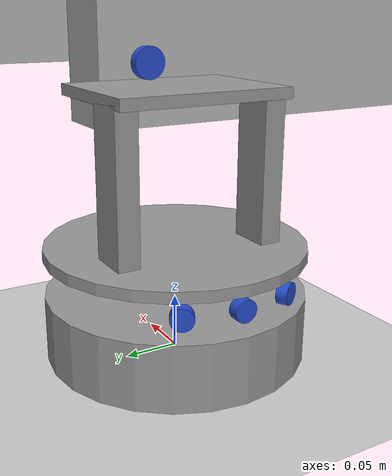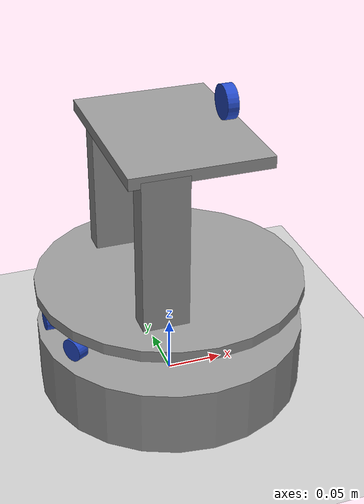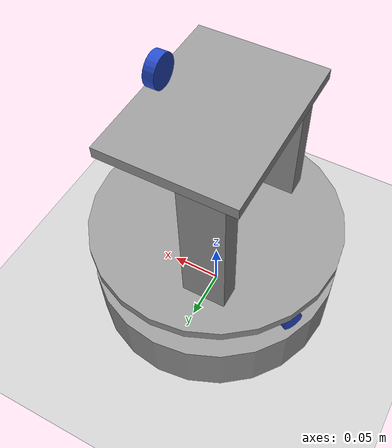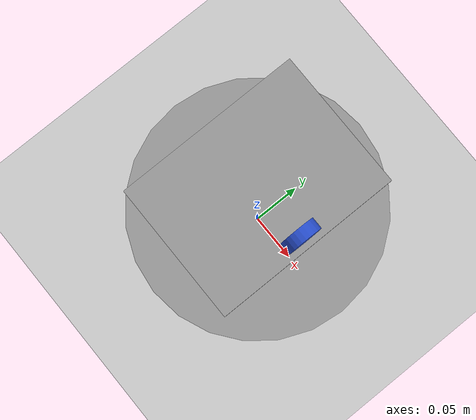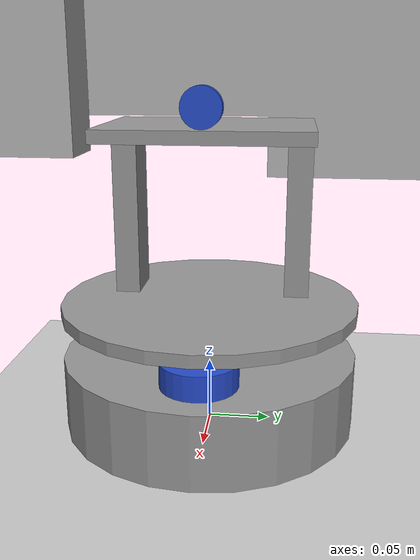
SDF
<?xml version="1.0" ?>
<sdf version="1.5">
  <world name="default">
    <include>
      <uri>model://ground_plane</uri>
    </include>

    <include>
      <static>true</static>
      <uri>model://dummy_room</uri>
      <pose>0 0 0 0 0 0</pose>
    </include>

    <include>
      <uri>model://test_robot</uri>
      <pose>0 0 0 0 0 0</pose>
    </include>

    <scene>
      <ambient>0.5 0.5 0.5 1</ambient>
      <background>0.3 0.3 0.3 1</background>
    </scene>

    <light type="directional" name="sun">
      <cast_shadows>true</cast_shadows>
      <pose>0 0 10 0 0 0</pose>
      <diffuse>0.2 0.2 0.2 1</diffuse>
      <specular>0.2 0.2 0.2 1</specular>
      <attenuation>
        <range>1000</range>
        <constant>0.9</constant>
        <linear>0.01</linear>
        <quadratic>0.001</quadratic>
      </attenuation>
      <direction>0.05 0.05 -1.0</direction>
    </light>

    <light name='point_light_0' type='spot'>
      <cast_shadows>true</cast_shadows>
      <pose>-1.0 -1.0 2.5 0 0 0</pose>
      <diffuse>0.4 0.4 0.4 1</diffuse>
      <specular>0.2 0.2 0.2 1</specular>
      <attenuation>
        <range>20</range>
        <constant>0.2</constant>
        <linear>0.01</linear>
        <quadratic>0.001</quadratic>
      </attenuation>
      <direction>0 0 -1</direction>
      <spot>
        <inner_angle>0.6</inner_angle>
        <outer_angle>2</outer_angle>
        <falloff>1</falloff>
      </spot>
    </light>

    <light name='point_light_1' type='spot'>
      <cast_shadows>true</cast_shadows>
      <pose>2 -5.0 2.5 0 0 0</pose>
      <diffuse>0.4 0.4 0.4 1</diffuse>
      <specular>0.2 0.2 0.2 1</specular>
      <attenuation>
        <range>20</range>
        <constant>0.2</constant>
        <linear>0.01</linear>
        <quadratic>0.001</quadratic>
      </attenuation>
      <direction>0 0 -1</direction>
      <spot>
        <inner_angle>0.6</inner_angle>
        <outer_angle>2</outer_angle>
        <falloff>1</falloff>
      </spot>
    </light>

    <physics name='default_physics' default='0' type='ode'>
      <max_step_size>0.005</max_step_size>
      <real_time_factor>1</real_time_factor>
      <real_time_update_rate>200</real_time_update_rate>
    </physics>
  </world>
</sdf>

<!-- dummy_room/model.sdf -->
<sdf version="1.4">
<model name="dummy_room">
  <pose>0 0 0 0 0 0</pose>
    <link name="link">
      <inertial>
        <mass>1.0</mass>
        <inertia>
          <ixx>0.083</ixx>
          <ixy>0.0</ixy>
          <ixz>0.0</ixz>
          <iyy>0.083</iyy>
          <iyz>0.0</iyz>
          <izz>0.083</izz>
        </inertia>
      </inertial>
      <collision name="collision">
        <geometry>
          <mesh>
            <uri>model://dummy_room/room.stl</uri>
          </mesh>
        </geometry>
      </collision>
      <visual name="visual">
        <geometry>
          <mesh>
            <uri>model://dummy_room/room.stl</uri>
          </mesh>
        </geometry>
      </visual>
    </link>
  </model>
</sdf>

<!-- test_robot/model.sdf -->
<sdf version="1.4">
  <model name="test_robot">
    <link name="base">
      <pose>0 0 0.03 0 0 0</pose>
      <inertial>
        <mass>1.5</mass>
        <inertia>
          <ixx>0.083</ixx>
          <ixy>0.0</ixy>
          <ixz>0.0</ixz>
          <iyy>0.083</iyy>
          <iyz>0.0</iyz>
          <izz>0.083</izz>
        </inertia>
      </inertial>
      <collision name="collision">
        <geometry>
          <cylinder>
            <radius>0.12</radius>
            <length>0.06</length>
          </cylinder>
        </geometry>
        <surface>
          <friction>
            <ode>
              <mu>0.01</mu>
              <mu2>0.01</mu2>
            </ode>
          </friction>
        </surface>
      </collision>
      <visual name="visual">
        <geometry>
          <cylinder>
            <radius>0.12</radius>
            <length>0.06</length>
          </cylinder>
        </geometry>
        <material>
          <script>
            <uri>file://media/materials/scripts/gazebo.material</uri>
            <name>Gazebo/Grey</name>
          </script>
        </material>
      </visual>
    </link>

    <joint name='middle_joint' type='fixed'>
      <parent>base</parent>
      <child>middle</child>
    </joint>

    <link name="middle">
      <pose>0 0 0.1 0 0 0</pose>
      <inertial>
        <mass>0.1</mass>
        <inertia>
          <ixx>0.083</ixx>
          <ixy>0.0</ixy>
          <ixz>0.0</ixz>
          <iyy>0.083</iyy>
          <iyz>0.0</iyz>
          <izz>0.083</izz>
        </inertia>
      </inertial>
      <collision name="collision">
        <geometry>
          <cylinder>
            <radius>0.12</radius>
            <length>0.01</length>
          </cylinder>
        </geometry>
      </collision>
      <visual name="visual">
        <geometry>
          <cylinder>
            <radius>0.12</radius>
            <length>0.01</length>
          </cylinder>
        </geometry>
        <material>
          <script>
            <uri>file://media/materials/scripts/gazebo.material</uri>
            <name>Gazebo/Grey</name>
          </script>
        </material>
      </visual>
    </link>

    <joint name='top_joint' type='fixed'>
      <parent>base</parent>
      <child>top</child>
    </joint>

    <link name="top">
      <pose>0 0 0.24 0 0 0</pose>
      <inertial>
        <mass>0.1</mass>
        <inertia>
          <ixx>0.083</ixx>
          <ixy>0.0</ixy>
          <ixz>0.0</ixz>
          <iyy>0.083</iyy>
          <iyz>0.0</iyz>
          <izz>0.083</izz>
        </inertia>
      </inertial>
      <collision name="collision">
        <geometry>
          <box>
            <size>0.12 0.16 0.01</size>
          </box>
        </geometry>
      </collision>
      <visual name="visual">
        <geometry>
          <box>
            <size>0.12 0.16 0.01</size>
          </box>
        </geometry>
        <material>
          <script>
            <uri>file://media/materials/scripts/gazebo.material</uri>
            <name>Gazebo/Grey</name>
          </script>
        </material>
      </visual>
    </link>

    <joint name='left_joint' type='fixed'>
      <parent>base</parent>
      <child>left</child>
    </joint>

    <link name="left">
      <pose>-0.03 0.07 0.17 0 0 0</pose>
      <inertial>
        <mass>0.1</mass>
        <inertia>
          <ixx>0.083</ixx>
          <ixy>0.0</ixy>
          <ixz>0.0</ixz>
          <iyy>0.083</iyy>
          <iyz>0.0</iyz>
          <izz>0.083</izz>
        </inertia>
      </inertial>
      <collision name="collision">
        <geometry>
          <box>
            <size>0.04 0.02 0.14</size>
          </box>
        </geometry>
      </collision>
      <visual name="visual">
        <geometry>
          <box>
            <size>0.04 0.02 0.14</size>
          </box>
        </geometry>
        <material>
          <script>
            <uri>file://media/materials/scripts/gazebo.material</uri>
            <name>Gazebo/Grey</name>
          </script>
        </material>
      </visual>
    </link>

    <joint name='right_joint' type='fixed'>
      <parent>base</parent>
      <child>right</child>
    </joint>

    <link name="right">
      <pose>-0.03 -0.07 0.17 0 0 0</pose>
      <inertial>
        <mass>0.1</mass>
        <inertia>
          <ixx>0.083</ixx>
          <ixy>0.0</ixy>
          <ixz>0.0</ixz>
          <iyy>0.083</iyy>
          <iyz>0.0</iyz>
          <izz>0.083</izz>
        </inertia>
      </inertial>
      <collision name="collision">
        <geometry>
          <box>
            <size>0.04 0.02 0.14</size>
          </box>
        </geometry>
      </collision>
      <visual name="visual">
        <geometry>
          <box>
            <size>0.04 0.02 0.14</size>
          </box>
        </geometry>
        <material>
          <script>
            <uri>file://media/materials/scripts/gazebo.material</uri>
            <name>Gazebo/Grey</name>
          </script>
        </material>
      </visual>
    </link>

    <!-- plugins -->

    <plugin name="object_controller" filename="libgazebo_ros_planar_move.so">
      <commandTopic>/cart/cmd_vel</commandTopic>
      <odometryTopic>/cart/odom</odometryTopic>
      <odometryFrame>odom</odometryFrame>
      <odometryRate>20.0</odometryRate>
      <robotBaseFrame>base_link</robotBaseFrame>
    </plugin>

    <plugin name="ground_truth" filename="libgazebo_ros_p3d.so">
      <frameName>map</frameName>
      <bodyName>base</bodyName>
      <topicName>/true_tracker/odom</topicName>
      <updateRate>10.0</updateRate>
    </plugin>

    <joint name='laser_joint' type='fixed'>
      <parent>base</parent>
      <child>laser</child>
    </joint>
    <link name="laser">
      <pose>0.07 0 0.07 0 0 0</pose>
      <inertial>
        <mass>0.05</mass>
        <inertia>
          <ixx>0.083</ixx>
          <ixy>0.0</ixy>
          <ixz>0.0</ixz>
          <iyy>0.083</iyy>
          <iyz>0.0</iyz>
          <izz>0.083</izz>
        </inertia>
      </inertial>
      <collision name="collision">
        <geometry>
          <cylinder>
            <radius>0.03</radius>
            <length>0.02</length>
          </cylinder>
        </geometry>
      </collision>
      <visual name="visual">
        <geometry>
          <cylinder>
            <radius>0.03</radius>
            <length>0.02</length>
          </cylinder>
        </geometry>
        <material>
          <script>
            <uri>file://media/materials/scripts/gazebo.material</uri>
            <name>Gazebo/Blue</name>
          </script>
        </material>
      </visual>
      <sensor type="ray" name="laser_ray">
        <pose>0 0 0 0 0 0</pose>
        <visualize>true</visualize>
        <update_rate>7</update_rate>
        <ray>
          <scan>
            <horizontal>
              <samples>300</samples>
              <resolution>1</resolution>
              <min_angle>-3.141592</min_angle>
              <max_angle>3.141592</max_angle>
            </horizontal>
          </scan>
          <range>
            <min>0.05</min>
            <max>20.0</max>
            <resolution>0.01</resolution>
          </range>
          <noise>
            <type>gaussian</type>
            <mean>0.0</mean>
            <stddev>0.01</stddev>
          </noise>
        </ray>
        <plugin name="gazebo_ros_lidar_controller" filename="libgazebo_ros_laser.so">
          <topicName>/front_laser/scan</topicName>
          <frameName>front_laser_link</frameName>
        </plugin>
      </sensor>
    </link>

    <joint name='camera_joint' type='fixed'>
      <parent>base</parent>
      <child>camera</child>
    </joint>
    <link name="camera">
      <pose>0.05 0 0.26 0 1.5707 0</pose>
      <inertial>
        <mass>0.05</mass>
        <inertia>
          <ixx>0.083</ixx>
          <ixy>0.0</ixy>
          <ixz>0.0</ixz>
          <iyy>0.083</iyy>
          <iyz>0.0</iyz>
          <izz>0.083</izz>
        </inertia>
      </inertial>
      <collision name="collision">
        <geometry>
          <cylinder>
            <radius>0.015</radius>
            <length>0.01</length>
          </cylinder>
        </geometry>
      </collision>
      <visual name="visual">
        <geometry>
          <cylinder>
            <radius>0.015</radius>
            <length>0.01</length>
          </cylinder>
        </geometry>
        <material>
          <script>
            <uri>file://media/materials/scripts/gazebo.material</uri>
            <name>Gazebo/Blue</name>
          </script>
        </material>
      </visual>
      <sensor type="camera" name="head_camera">
        <update_rate>10.0</update_rate>
        <camera>
          <pose>0 0 0 0 -1.5707 0</pose>
          <horizontal_fov>1.3962634</horizontal_fov>
          <image>
            <width>800</width>
            <height>600</height>
            <format>R8G8B8</format>
          </image>
          <clip>
            <near>0.02</near>
            <far>100</far>
          </clip>
          <noise>
            <type>gaussian</type>
            <mean>0.0</mean>
            <stddev>0.007</stddev>
          </noise>
        </camera>
        <plugin name="camera_controller" filename="libgazebo_ros_camera.so">
          <alwaysOn>true</alwaysOn>
          <updateRate>10.0</updateRate>
          <cameraName>head_camera</cameraName>
          <imageTopicName>/head_camera/image_raw</imageTopicName>
          <cameraInfoTopicName>/head_camera/camera_info</cameraInfoTopicName>
          <frameName>head_camera_link</frameName>
          <hackBaseline>0.0</hackBaseline>
          <distortionK1>0.0</distortionK1>
          <distortionK2>0.0</distortionK2>
          <distortionK3>0.0</distortionK3>
          <distortionT1>0.0</distortionT1>
          <distortionT2>0.0</distortionT2>
        </plugin>
      </sensor>
    </link>

    <joint name='sonar0_joint' type='fixed'>
      <parent>base</parent>
      <child>sonar0</child>
    </joint>
    <link name="sonar0">
      <pose>-0.10 0.05 0.08 0 0 2.6415</pose>
      <inertial>
        <mass>0.05</mass>
        <inertia>
          <ixx>0.083</ixx>
          <ixy>0.0</ixy>
          <ixz>0.0</ixz>
          <iyy>0.083</iyy>
          <iyz>0.0</iyz>
          <izz>0.083</izz>
        </inertia>
      </inertial>
      <collision name="collision">
        <pose>0 0 0 0 1.5707 0</pose>
        <geometry>
          <cylinder>
            <radius>0.01</radius>
            <length>0.01</length>
          </cylinder>
        </geometry>
      </collision>
      <visual name="visual">
        <pose>0 0 0 0 1.5707 0</pose>
        <geometry>
          <cylinder>
            <radius>0.01</radius>
            <length>0.01</length>
          </cylinder>
        </geometry>
        <material>
          <script>
            <uri>file://media/materials/scripts/gazebo.material</uri>
            <name>Gazebo/Blue</name>
          </script>
        </material>
      </visual>
      <sensor type="ray" name="sonar">
        <pose>0 0 0 0 0 0</pose>
        <visualize>true</visualize>
        <update_rate>20</update_rate>
        <ray>
          <scan>
            <horizontal>
              <samples>3</samples>
              <resolution>1</resolution>
              <min_angle>-0.05</min_angle>
              <max_angle>0.05</max_angle>
            </horizontal>
            <vertical>
              <samples>3</samples>
              <resolution>1</resolution>
              <min_angle>-0.01</min_angle>
              <max_angle>0.01</max_angle>
            </vertical>
         </scan>
          <range>
            <min>0.05</min>
            <max>2</max>
            <resolution>0.02</resolution>
          </range>
        </ray>
        <plugin filename="libgazebo_ros_range.so" name="gazebo_ros_range">
          <gaussianNoise>0.005</gaussianNoise>
          <alwaysOn>true</alwaysOn>
          <updateRate>10</updateRate>
          <topicName>/sonar0/range</topicName>
          <frameName>sonar0_link</frameName>
          <radiation>ULTRASOUND</radiation>
          <fov>0.1</fov>
        </plugin>
      </sensor>
    </link>

    <joint name='sonar1_joint' type='fixed'>
      <parent>base</parent>
      <child>sonar1</child>
    </joint>
    <link name="sonar1">
      <pose>-0.11 0 0.08 0 0 3.1415</pose>
      <inertial>
        <mass>0.05</mass>
        <inertia>
          <ixx>0.083</ixx>
          <ixy>0.0</ixy>
          <ixz>0.0</ixz>
          <iyy>0.083</iyy>
          <iyz>0.0</iyz>
          <izz>0.083</izz>
        </inertia>
      </inertial>
      <collision name="collision">
        <pose>0 0 0 0 1.5707 0</pose>
        <geometry>
          <cylinder>
            <radius>0.01</radius>
            <length>0.01</length>
          </cylinder>
        </geometry>
      </collision>
      <visual name="visual">
        <pose>0 0 0 0 1.5707 0</pose>
        <geometry>
          <cylinder>
            <radius>0.01</radius>
            <length>0.01</length>
          </cylinder>
        </geometry>
        <material>
          <script>
            <uri>file://media/materials/scripts/gazebo.material</uri>
            <name>Gazebo/Blue</name>
          </script>
        </material>
      </visual>
      <sensor type="ray" name="sonar">
        <pose>0 0 0 0 0 0</pose>
        <visualize>true</visualize>
        <update_rate>20</update_rate>
        <ray>
          <scan>
            <horizontal>
              <samples>3</samples>
              <resolution>1</resolution>
              <min_angle>-0.05</min_angle>
              <max_angle>0.05</max_angle>
            </horizontal>
            <vertical>
              <samples>3</samples>
              <resolution>1</resolution>
              <min_angle>-0.01</min_angle>
              <max_angle>0.01</max_angle>
            </vertical>
         </scan>
          <range>
            <min>0.05</min>
            <max>2</max>
            <resolution>0.02</resolution>
          </range>
        </ray>
        <plugin filename="libgazebo_ros_range.so" name="gazebo_ros_range">
          <gaussianNoise>0.005</gaussianNoise>
          <alwaysOn>true</alwaysOn>
          <updateRate>10</updateRate>
          <topicName>/sonar1/range</topicName>
          <frameName>sonar1_link</frameName>
          <radiation>ULTRASOUND</radiation>
          <fov>0.1</fov>
        </plugin>
      </sensor>
    </link>

    <joint name='sonar2_joint' type='fixed'>
      <parent>base</parent>
      <child>sonar2</child>
    </joint>
    <link name="sonar2">
      <pose>-0.10 -0.05 0.08 0 0 3.6515</pose>
      <inertial>
        <mass>0.05</mass>
        <inertia>
          <ixx>0.083</ixx>
          <ixy>0.0</ixy>
          <ixz>0.0</ixz>
          <iyy>0.083</iyy>
          <iyz>0.0</iyz>
          <izz>0.083</izz>
        </inertia>
      </inertial>
      <collision name="collision">
        <pose>0 0 0 0 1.5707 0</pose>
        <geometry>
          <cylinder>
            <radius>0.01</radius>
            <length>0.01</length>
          </cylinder>
        </geometry>
      </collision>
      <visual name="visual">
        <pose>0 0 0 0 1.5707 0</pose>
        <geometry>
          <cylinder>
            <radius>0.01</radius>
            <length>0.01</length>
          </cylinder>
        </geometry>
        <material>
          <script>
            <uri>file://media/materials/scripts/gazebo.material</uri>
            <name>Gazebo/Blue</name>
          </script>
        </material>
      </visual>
      <sensor type="ray" name="sonar">
        <pose>0 0 0 0 0 0</pose>
        <visualize>true</visualize>
        <update_rate>20</update_rate>
        <ray>
          <scan>
            <horizontal>
              <samples>3</samples>
              <resolution>1</resolution>
              <min_angle>-0.05</min_angle>
              <max_angle>0.05</max_angle>
            </horizontal>
            <vertical>
              <samples>3</samples>
              <resolution>1</resolution>
              <min_angle>-0.01</min_angle>
              <max_angle>0.01</max_angle>
            </vertical>
         </scan>
          <range>
            <min>0.05</min>
            <max>2</max>
            <resolution>0.02</resolution>
          </range>
        </ray>
        <plugin filename="libgazebo_ros_range.so" name="gazebo_ros_range">
          <gaussianNoise>0.005</gaussianNoise>
          <alwaysOn>true</alwaysOn>
          <updateRate>10</updateRate>
          <topicName>/sonar2/range</topicName>
          <frameName>sonar2_link</frameName>
          <radiation>ULTRASOUND</radiation>
          <fov>0.1</fov>
        </plugin>
      </sensor>
    </link>
  </model>
</sdf>
